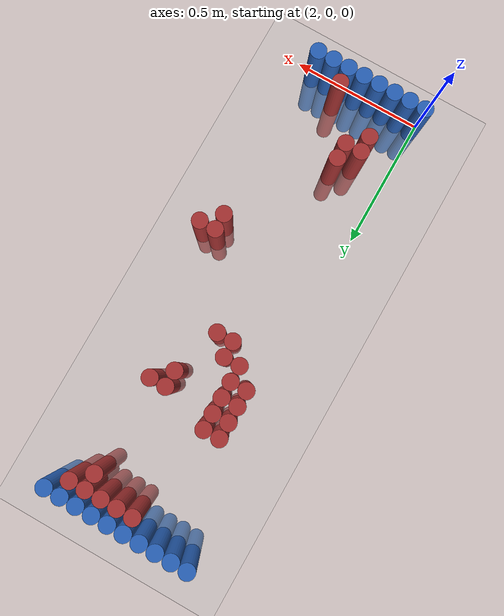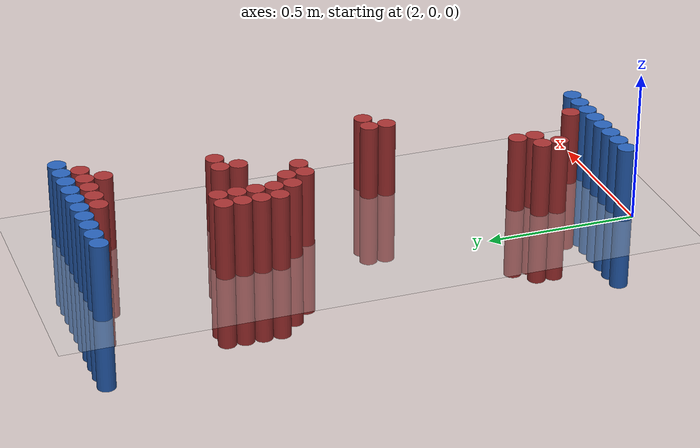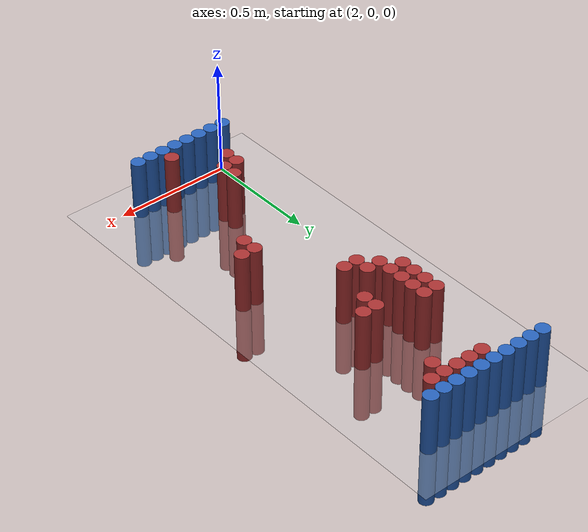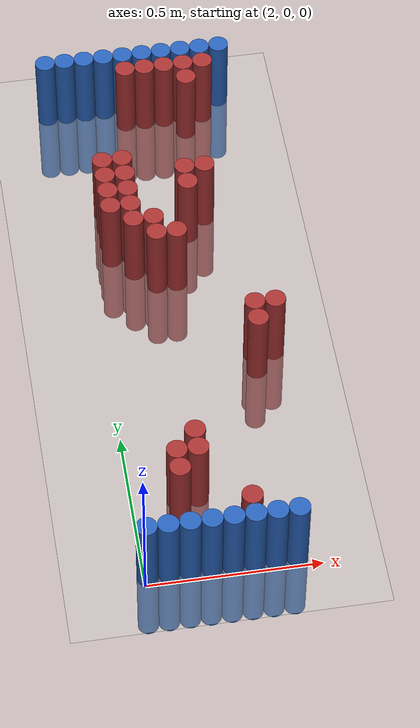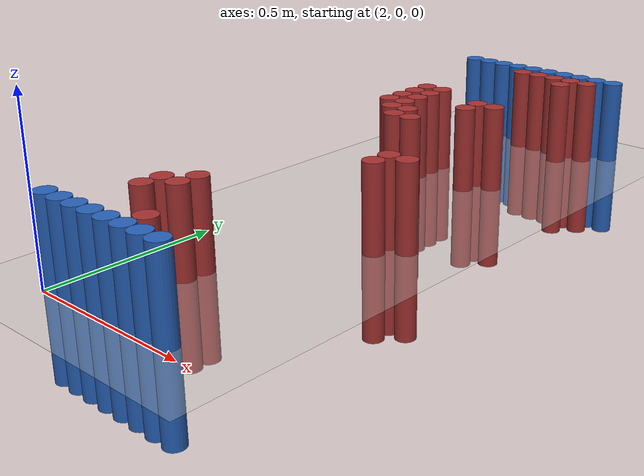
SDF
<sdf version="1.6">
 <world name="default">
  <model name="ground_plane">
   <static>1</static>
   <link name="link">
    <collision name="collision">
     <geometry><plane><normal>0 0 1</normal><size>100 100</size></plane></geometry>
     <surface><friction><ode><mu>100</mu><mu2>50</mu2></ode></friction></surface>
    </collision>
    <visual name="visual">
     <cast_shadows>0</cast_shadows>
     <geometry><plane><normal>0 0 1</normal><size>100 100</size></plane></geometry>
     <material>
      <script><uri>file://media/materials/scripts/gazebo.material</uri><name>Gazebo/Grey</name></script>
     </material>
    </visual>
   </link>
  </model>
  <model name="unit_cylinder_92">
   <static>1</static>
   <pose>1.950000 1.770000 0.000000 0.000000 0.000000 0.000000</pose>
   <link name="link">
    <inertial>
     <mass>1</mass>
     <inertia><ixx>0.145833</ixx><ixy>0</ixy><ixz>0</ixz><iyy>0.145833</iyy><iyz>0</iyz><izz>0.125</izz></inertia>
    </inertial>
    <collision name="collision">
     <geometry><cylinder><radius>0.030000</radius><length>0.5</length></cylinder></geometry>
    </collision>
    <visual name="visual">
     <geometry><cylinder><radius>0.030000</radius><length>0.5</length></cylinder></geometry>
     <material>
      <ambient>0.152000 0.379000 0.720000 1</ambient>
      <diffuse>0.152000 0.379000 0.720000 1</diffuse>
     </material>
     <material>
      <script><name>Gazebo/Grey</name><uri>file://media/materials/scripts/gazebo.material</uri></script>
     </material>
    </visual>
   </link>
  </model>
  <model name="unit_cylinder_93">
   <static>1</static>
   <pose>2.010000 0.030000 0.000000 0.000000 0.000000 0.000000</pose>
   <link name="link">
    <inertial>
     <mass>1</mass>
     <inertia><ixx>0.145833</ixx><ixy>0</ixy><ixz>0</ixz><iyy>0.145833</iyy><iyz>0</iyz><izz>0.125</izz></inertia>
    </inertial>
    <collision name="collision">
     <geometry><cylinder><radius>0.030000</radius><length>0.5</length></cylinder></geometry>
    </collision>
    <visual name="visual">
     <geometry><cylinder><radius>0.030000</radius><length>0.5</length></cylinder></geometry>
     <material>
      <ambient>0.152000 0.379000 0.720000 1</ambient>
      <diffuse>0.152000 0.379000 0.720000 1</diffuse>
     </material>
     <material>
      <script><name>Gazebo/Grey</name><uri>file://media/materials/scripts/gazebo.material</uri></script>
     </material>
    </visual>
   </link>
  </model>
  <model name="unit_cylinder_94">
   <static>1</static>
   <pose>2.010000 1.770000 0.000000 0.000000 0.000000 0.000000</pose>
   <link name="link">
    <inertial>
     <mass>1</mass>
     <inertia><ixx>0.145833</ixx><ixy>0</ixy><ixz>0</ixz><iyy>0.145833</iyy><iyz>0</iyz><izz>0.125</izz></inertia>
    </inertial>
    <collision name="collision">
     <geometry><cylinder><radius>0.030000</radius><length>0.5</length></cylinder></geometry>
    </collision>
    <visual name="visual">
     <geometry><cylinder><radius>0.030000</radius><length>0.5</length></cylinder></geometry>
     <material>
      <ambient>0.152000 0.379000 0.720000 1</ambient>
      <diffuse>0.152000 0.379000 0.720000 1</diffuse>
     </material>
     <material>
      <script><name>Gazebo/Grey</name><uri>file://media/materials/scripts/gazebo.material</uri></script>
     </material>
    </visual>
   </link>
  </model>
  <model name="unit_cylinder_95">
   <static>1</static>
   <pose>2.070000 1.770000 0.000000 0.000000 0.000000 0.000000</pose>
   <link name="link">
    <inertial>
     <mass>1</mass>
     <inertia><ixx>0.145833</ixx><ixy>0</ixy><ixz>0</ixz><iyy>0.145833</iyy><iyz>0</iyz><izz>0.125</izz></inertia>
    </inertial>
    <collision name="collision">
     <geometry><cylinder><radius>0.030000</radius><length>0.5</length></cylinder></geometry>
    </collision>
    <visual name="visual">
     <geometry><cylinder><radius>0.030000</radius><length>0.5</length></cylinder></geometry>
     <material>
      <ambient>0.152000 0.379000 0.720000 1</ambient>
      <diffuse>0.152000 0.379000 0.720000 1</diffuse>
     </material>
     <material>
      <script><name>Gazebo/Grey</name><uri>file://media/materials/scripts/gazebo.material</uri></script>
     </material>
    </visual>
   </link>
  </model>
  <model name="unit_cylinder_96">
   <static>1</static>
   <pose>2.130000 1.770000 0.000000 0.000000 0.000000 0.000000</pose>
   <link name="link">
    <inertial>
     <mass>1</mass>
     <inertia><ixx>0.145833</ixx><ixy>0</ixy><ixz>0</ixz><iyy>0.145833</iyy><iyz>0</iyz><izz>0.125</izz></inertia>
    </inertial>
    <collision name="collision">
     <geometry><cylinder><radius>0.030000</radius><length>0.5</length></cylinder></geometry>
    </collision>
    <visual name="visual">
     <geometry><cylinder><radius>0.030000</radius><length>0.5</length></cylinder></geometry>
     <material>
      <ambient>0.152000 0.379000 0.720000 1</ambient>
      <diffuse>0.152000 0.379000 0.720000 1</diffuse>
     </material>
     <material>
      <script><name>Gazebo/Grey</name><uri>file://media/materials/scripts/gazebo.material</uri></script>
     </material>
    </visual>
   </link>
  </model>
  <model name="unit_cylinder_97">
   <static>1</static>
   <pose>2.190000 1.770000 0.000000 0.000000 0.000000 0.000000</pose>
   <link name="link">
    <inertial>
     <mass>1</mass>
     <inertia><ixx>0.145833</ixx><ixy>0</ixy><ixz>0</ixz><iyy>0.145833</iyy><iyz>0</iyz><izz>0.125</izz></inertia>
    </inertial>
    <collision name="collision">
     <geometry><cylinder><radius>0.030000</radius><length>0.5</length></cylinder></geometry>
    </collision>
    <visual name="visual">
     <geometry><cylinder><radius>0.030000</radius><length>0.5</length></cylinder></geometry>
     <material>
      <ambient>0.152000 0.379000 0.720000 1</ambient>
      <diffuse>0.152000 0.379000 0.720000 1</diffuse>
     </material>
     <material>
      <script><name>Gazebo/Grey</name><uri>file://media/materials/scripts/gazebo.material</uri></script>
     </material>
    </visual>
   </link>
  </model>
  <model name="unit_cylinder_98">
   <static>1</static>
   <pose>2.250000 1.770000 0.000000 0.000000 0.000000 0.000000</pose>
   <link name="link">
    <inertial>
     <mass>1</mass>
     <inertia><ixx>0.145833</ixx><ixy>0</ixy><ixz>0</ixz><iyy>0.145833</iyy><iyz>0</iyz><izz>0.125</izz></inertia>
    </inertial>
    <collision name="collision">
     <geometry><cylinder><radius>0.030000</radius><length>0.5</length></cylinder></geometry>
    </collision>
    <visual name="visual">
     <geometry><cylinder><radius>0.030000</radius><length>0.5</length></cylinder></geometry>
     <material>
      <ambient>0.152000 0.379000 0.720000 1</ambient>
      <diffuse>0.152000 0.379000 0.720000 1</diffuse>
     </material>
     <material>
      <script><name>Gazebo/Grey</name><uri>file://media/materials/scripts/gazebo.material</uri></script>
     </material>
    </visual>
   </link>
  </model>
  <model name="unit_cylinder_99">
   <static>1</static>
   <pose>2.310000 1.770000 0.000000 0.000000 0.000000 0.000000</pose>
   <link name="link">
    <inertial>
     <mass>1</mass>
     <inertia><ixx>0.145833</ixx><ixy>0</ixy><ixz>0</ixz><iyy>0.145833</iyy><iyz>0</iyz><izz>0.125</izz></inertia>
    </inertial>
    <collision name="collision">
     <geometry><cylinder><radius>0.030000</radius><length>0.5</length></cylinder></geometry>
    </collision>
    <visual name="visual">
     <geometry><cylinder><radius>0.030000</radius><length>0.5</length></cylinder></geometry>
     <material>
      <ambient>0.152000 0.379000 0.720000 1</ambient>
      <diffuse>0.152000 0.379000 0.720000 1</diffuse>
     </material>
     <material>
      <script><name>Gazebo/Grey</name><uri>file://media/materials/scripts/gazebo.material</uri></script>
     </material>
    </visual>
   </link>
  </model>
  <model name="unit_cylinder_100">
   <static>1</static>
   <pose>2.370000 1.770000 0.000000 0.000000 0.000000 0.000000</pose>
   <link name="link">
    <inertial>
     <mass>1</mass>
     <inertia><ixx>0.145833</ixx><ixy>0</ixy><ixz>0</ixz><iyy>0.145833</iyy><iyz>0</iyz><izz>0.125</izz></inertia>
    </inertial>
    <collision name="collision">
     <geometry><cylinder><radius>0.030000</radius><length>0.5</length></cylinder></geometry>
    </collision>
    <visual name="visual">
     <geometry><cylinder><radius>0.030000</radius><length>0.5</length></cylinder></geometry>
     <material>
      <ambient>0.152000 0.379000 0.720000 1</ambient>
      <diffuse>0.152000 0.379000 0.720000 1</diffuse>
     </material>
     <material>
      <script><name>Gazebo/Grey</name><uri>file://media/materials/scripts/gazebo.material</uri></script>
     </material>
    </visual>
   </link>
  </model>
  <model name="unit_cylinder_101">
   <static>1</static>
   <pose>2.430000 1.770000 0.000000 0.000000 0.000000 0.000000</pose>
   <link name="link">
    <inertial>
     <mass>1</mass>
     <inertia><ixx>0.145833</ixx><ixy>0</ixy><ixz>0</ixz><iyy>0.145833</iyy><iyz>0</iyz><izz>0.125</izz></inertia>
    </inertial>
    <collision name="collision">
     <geometry><cylinder><radius>0.030000</radius><length>0.5</length></cylinder></geometry>
    </collision>
    <visual name="visual">
     <geometry><cylinder><radius>0.030000</radius><length>0.5</length></cylinder></geometry>
     <material>
      <ambient>0.152000 0.379000 0.720000 1</ambient>
      <diffuse>0.152000 0.379000 0.720000 1</diffuse>
     </material>
     <material>
      <script><name>Gazebo/Grey</name><uri>file://media/materials/scripts/gazebo.material</uri></script>
     </material>
    </visual>
   </link>
  </model>
  <model name="unit_cylinder_102">
   <static>1</static>
   <pose>2.490000 1.770000 0.000000 0.000000 0.000000 0.000000</pose>
   <link name="link">
    <inertial>
     <mass>1</mass>
     <inertia><ixx>0.145833</ixx><ixy>0</ixy><ixz>0</ixz><iyy>0.145833</iyy><iyz>0</iyz><izz>0.125</izz></inertia>
    </inertial>
    <collision name="collision">
     <geometry><cylinder><radius>0.030000</radius><length>0.5</length></cylinder></geometry>
    </collision>
    <visual name="visual">
     <geometry><cylinder><radius>0.030000</radius><length>0.5</length></cylinder></geometry>
     <material>
      <ambient>0.152000 0.379000 0.720000 1</ambient>
      <diffuse>0.152000 0.379000 0.720000 1</diffuse>
     </material>
     <material>
      <script><name>Gazebo/Grey</name><uri>file://media/materials/scripts/gazebo.material</uri></script>
     </material>
    </visual>
   </link>
  </model>
  <model name="unit_cylinder_125">
   <static>1</static>
   <pose>2.190000 1.710000 0.000000 0.000000 0.000000 0.000000</pose>
   <link name="link">
    <inertial>
     <mass>1</mass>
     <inertia><ixx>0.145833</ixx><ixy>0</ixy><ixz>0</ixz><iyy>0.145833</iyy><iyz>0</iyz><izz>0.125</izz></inertia>
    </inertial>
    <collision name="collision">
     <geometry><cylinder><radius>0.030000</radius><length>0.5</length></cylinder></geometry>
    </collision>
    <visual name="visual">
     <geometry><cylinder><radius>0.030000</radius><length>0.5</length></cylinder></geometry>
     <material>
      <ambient>0.648000 0.192000 0.192000 1</ambient>
      <diffuse>0.648000 0.192000 0.192000 1</diffuse>
     </material>
     <material>
      <script><name>Gazebo/Grey</name><uri>file://media/materials/scripts/gazebo.material</uri></script>
     </material>
    </visual>
   </link>
  </model>
  <model name="unit_cylinder_126">
   <static>1</static>
   <pose>2.250000 1.710000 0.000000 0.000000 0.000000 0.000000</pose>
   <link name="link">
    <inertial>
     <mass>1</mass>
     <inertia><ixx>0.145833</ixx><ixy>0</ixy><ixz>0</ixz><iyy>0.145833</iyy><iyz>0</iyz><izz>0.125</izz></inertia>
    </inertial>
    <collision name="collision">
     <geometry><cylinder><radius>0.030000</radius><length>0.5</length></cylinder></geometry>
    </collision>
    <visual name="visual">
     <geometry><cylinder><radius>0.030000</radius><length>0.5</length></cylinder></geometry>
     <material>
      <ambient>0.648000 0.192000 0.192000 1</ambient>
      <diffuse>0.648000 0.192000 0.192000 1</diffuse>
     </material>
     <material>
      <script><name>Gazebo/Grey</name><uri>file://media/materials/scripts/gazebo.material</uri></script>
     </material>
    </visual>
   </link>
  </model>
  <model name="unit_cylinder_127">
   <static>1</static>
   <pose>2.310000 1.710000 0.000000 0.000000 0.000000 0.000000</pose>
   <link name="link">
    <inertial>
     <mass>1</mass>
     <inertia><ixx>0.145833</ixx><ixy>0</ixy><ixz>0</ixz><iyy>0.145833</iyy><iyz>0</iyz><izz>0.125</izz></inertia>
    </inertial>
    <collision name="collision">
     <geometry><cylinder><radius>0.030000</radius><length>0.5</length></cylinder></geometry>
    </collision>
    <visual name="visual">
     <geometry><cylinder><radius>0.030000</radius><length>0.5</length></cylinder></geometry>
     <material>
      <ambient>0.648000 0.192000 0.192000 1</ambient>
      <diffuse>0.648000 0.192000 0.192000 1</diffuse>
     </material>
     <material>
      <script><name>Gazebo/Grey</name><uri>file://media/materials/scripts/gazebo.material</uri></script>
     </material>
    </visual>
   </link>
  </model>
  <model name="unit_cylinder_128">
   <static>1</static>
   <pose>2.370000 1.710000 0.000000 0.000000 0.000000 0.000000</pose>
   <link name="link">
    <inertial>
     <mass>1</mass>
     <inertia><ixx>0.145833</ixx><ixy>0</ixy><ixz>0</ixz><iyy>0.145833</iyy><iyz>0</iyz><izz>0.125</izz></inertia>
    </inertial>
    <collision name="collision">
     <geometry><cylinder><radius>0.030000</radius><length>0.5</length></cylinder></geometry>
    </collision>
    <visual name="visual">
     <geometry><cylinder><radius>0.030000</radius><length>0.5</length></cylinder></geometry>
     <material>
      <ambient>0.648000 0.192000 0.192000 1</ambient>
      <diffuse>0.648000 0.192000 0.192000 1</diffuse>
     </material>
     <material>
      <script><name>Gazebo/Grey</name><uri>file://media/materials/scripts/gazebo.material</uri></script>
     </material>
    </visual>
   </link>
  </model>
  <model name="unit_cylinder_129">
   <static>1</static>
   <pose>2.430000 1.710000 0.000000 0.000000 0.000000 0.000000</pose>
   <link name="link">
    <inertial>
     <mass>1</mass>
     <inertia><ixx>0.145833</ixx><ixy>0</ixy><ixz>0</ixz><iyy>0.145833</iyy><iyz>0</iyz><izz>0.125</izz></inertia>
    </inertial>
    <collision name="collision">
     <geometry><cylinder><radius>0.030000</radius><length>0.5</length></cylinder></geometry>
    </collision>
    <visual name="visual">
     <geometry><cylinder><radius>0.030000</radius><length>0.5</length></cylinder></geometry>
     <material>
      <ambient>0.648000 0.192000 0.192000 1</ambient>
      <diffuse>0.648000 0.192000 0.192000 1</diffuse>
     </material>
     <material>
      <script><name>Gazebo/Grey</name><uri>file://media/materials/scripts/gazebo.material</uri></script>
     </material>
    </visual>
   </link>
  </model>
  <model name="unit_cylinder_135">
   <static>1</static>
   <pose>2.370000 1.650000 0.000000 0.000000 0.000000 0.000000</pose>
   <link name="link">
    <inertial>
     <mass>1</mass>
     <inertia><ixx>0.145833</ixx><ixy>0</ixy><ixz>0</ixz><iyy>0.145833</iyy><iyz>0</iyz><izz>0.125</izz></inertia>
    </inertial>
    <collision name="collision">
     <geometry><cylinder><radius>0.030000</radius><length>0.5</length></cylinder></geometry>
    </collision>
    <visual name="visual">
     <geometry><cylinder><radius>0.030000</radius><length>0.5</length></cylinder></geometry>
     <material>
      <ambient>0.648000 0.192000 0.192000 1</ambient>
      <diffuse>0.648000 0.192000 0.192000 1</diffuse>
     </material>
     <material>
      <script><name>Gazebo/Grey</name><uri>file://media/materials/scripts/gazebo.material</uri></script>
     </material>
    </visual>
   </link>
  </model>
  <model name="unit_cylinder_142">
   <static>1</static>
   <pose>2.070000 1.350000 0.000000 0.000000 0.000000 0.000000</pose>
   <link name="link">
    <inertial>
     <mass>1</mass>
     <inertia><ixx>0.145833</ixx><ixy>0</ixy><ixz>0</ixz><iyy>0.145833</iyy><iyz>0</iyz><izz>0.125</izz></inertia>
    </inertial>
    <collision name="collision">
     <geometry><cylinder><radius>0.030000</radius><length>0.5</length></cylinder></geometry>
    </collision>
    <visual name="visual">
     <geometry><cylinder><radius>0.030000</radius><length>0.5</length></cylinder></geometry>
     <material>
      <ambient>0.648000 0.192000 0.192000 1</ambient>
      <diffuse>0.648000 0.192000 0.192000 1</diffuse>
     </material>
     <material>
      <script><name>Gazebo/Grey</name><uri>file://media/materials/scripts/gazebo.material</uri></script>
     </material>
    </visual>
   </link>
  </model>
  <model name="unit_cylinder_143">
   <static>1</static>
   <pose>2.130000 1.350000 0.000000 0.000000 0.000000 0.000000</pose>
   <link name="link">
    <inertial>
     <mass>1</mass>
     <inertia><ixx>0.145833</ixx><ixy>0</ixy><ixz>0</ixz><iyy>0.145833</iyy><iyz>0</iyz><izz>0.125</izz></inertia>
    </inertial>
    <collision name="collision">
     <geometry><cylinder><radius>0.030000</radius><length>0.5</length></cylinder></geometry>
    </collision>
    <visual name="visual">
     <geometry><cylinder><radius>0.030000</radius><length>0.5</length></cylinder></geometry>
     <material>
      <ambient>0.648000 0.192000 0.192000 1</ambient>
      <diffuse>0.648000 0.192000 0.192000 1</diffuse>
     </material>
     <material>
      <script><name>Gazebo/Grey</name><uri>file://media/materials/scripts/gazebo.material</uri></script>
     </material>
    </visual>
   </link>
  </model>
  <model name="unit_cylinder_145">
   <static>1</static>
   <pose>2.070000 1.290000 0.000000 0.000000 0.000000 0.000000</pose>
   <link name="link">
    <inertial>
     <mass>1</mass>
     <inertia><ixx>0.145833</ixx><ixy>0</ixy><ixz>0</ixz><iyy>0.145833</iyy><iyz>0</iyz><izz>0.125</izz></inertia>
    </inertial>
    <collision name="collision">
     <geometry><cylinder><radius>0.030000</radius><length>0.5</length></cylinder></geometry>
    </collision>
    <visual name="visual">
     <geometry><cylinder><radius>0.030000</radius><length>0.5</length></cylinder></geometry>
     <material>
      <ambient>0.648000 0.192000 0.192000 1</ambient>
      <diffuse>0.648000 0.192000 0.192000 1</diffuse>
     </material>
     <material>
      <script><name>Gazebo/Grey</name><uri>file://media/materials/scripts/gazebo.material</uri></script>
     </material>
    </visual>
   </link>
  </model>
  <model name="unit_cylinder_146">
   <static>1</static>
   <pose>2.130000 1.290000 0.000000 0.000000 0.000000 0.000000</pose>
   <link name="link">
    <inertial>
     <mass>1</mass>
     <inertia><ixx>0.145833</ixx><ixy>0</ixy><ixz>0</ixz><iyy>0.145833</iyy><iyz>0</iyz><izz>0.125</izz></inertia>
    </inertial>
    <collision name="collision">
     <geometry><cylinder><radius>0.030000</radius><length>0.5</length></cylinder></geometry>
    </collision>
    <visual name="visual">
     <geometry><cylinder><radius>0.030000</radius><length>0.5</length></cylinder></geometry>
     <material>
      <ambient>0.648000 0.192000 0.192000 1</ambient>
      <diffuse>0.648000 0.192000 0.192000 1</diffuse>
     </material>
     <material>
      <script><name>Gazebo/Grey</name><uri>file://media/materials/scripts/gazebo.material</uri></script>
     </material>
    </visual>
   </link>
  </model>
  <model name="unit_cylinder_147">
   <static>1</static>
   <pose>2.310000 1.290000 0.000000 0.000000 0.000000 0.000000</pose>
   <link name="link">
    <inertial>
     <mass>1</mass>
     <inertia><ixx>0.145833</ixx><ixy>0</ixy><ixz>0</ixz><iyy>0.145833</iyy><iyz>0</iyz><izz>0.125</izz></inertia>
    </inertial>
    <collision name="collision">
     <geometry><cylinder><radius>0.030000</radius><length>0.5</length></cylinder></geometry>
    </collision>
    <visual name="visual">
     <geometry><cylinder><radius>0.030000</radius><length>0.5</length></cylinder></geometry>
     <material>
      <ambient>0.648000 0.192000 0.192000 1</ambient>
      <diffuse>0.648000 0.192000 0.192000 1</diffuse>
     </material>
     <material>
      <script><name>Gazebo/Grey</name><uri>file://media/materials/scripts/gazebo.material</uri></script>
     </material>
    </visual>
   </link>
  </model>
  <model name="unit_cylinder_148">
   <static>1</static>
   <pose>2.370000 1.290000 0.000000 0.000000 0.000000 0.000000</pose>
   <link name="link">
    <inertial>
     <mass>1</mass>
     <inertia><ixx>0.145833</ixx><ixy>0</ixy><ixz>0</ixz><iyy>0.145833</iyy><iyz>0</iyz><izz>0.125</izz></inertia>
    </inertial>
    <collision name="collision">
     <geometry><cylinder><radius>0.030000</radius><length>0.5</length></cylinder></geometry>
    </collision>
    <visual name="visual">
     <geometry><cylinder><radius>0.030000</radius><length>0.5</length></cylinder></geometry>
     <material>
      <ambient>0.648000 0.192000 0.192000 1</ambient>
      <diffuse>0.648000 0.192000 0.192000 1</diffuse>
     </material>
     <material>
      <script><name>Gazebo/Grey</name><uri>file://media/materials/scripts/gazebo.material</uri></script>
     </material>
    </visual>
   </link>
  </model>
  <model name="unit_cylinder_151">
   <static>1</static>
   <pose>2.070000 1.230000 0.000000 0.000000 0.000000 0.000000</pose>
   <link name="link">
    <inertial>
     <mass>1</mass>
     <inertia><ixx>0.145833</ixx><ixy>0</ixy><ixz>0</ixz><iyy>0.145833</iyy><iyz>0</iyz><izz>0.125</izz></inertia>
    </inertial>
    <collision name="collision">
     <geometry><cylinder><radius>0.030000</radius><length>0.5</length></cylinder></geometry>
    </collision>
    <visual name="visual">
     <geometry><cylinder><radius>0.030000</radius><length>0.5</length></cylinder></geometry>
     <material>
      <ambient>0.648000 0.192000 0.192000 1</ambient>
      <diffuse>0.648000 0.192000 0.192000 1</diffuse>
     </material>
     <material>
      <script><name>Gazebo/Grey</name><uri>file://media/materials/scripts/gazebo.material</uri></script>
     </material>
    </visual>
   </link>
  </model>
  <model name="unit_cylinder_152">
   <static>1</static>
   <pose>2.130000 1.230000 0.000000 0.000000 0.000000 0.000000</pose>
   <link name="link">
    <inertial>
     <mass>1</mass>
     <inertia><ixx>0.145833</ixx><ixy>0</ixy><ixz>0</ixz><iyy>0.145833</iyy><iyz>0</iyz><izz>0.125</izz></inertia>
    </inertial>
    <collision name="collision">
     <geometry><cylinder><radius>0.030000</radius><length>0.5</length></cylinder></geometry>
    </collision>
    <visual name="visual">
     <geometry><cylinder><radius>0.030000</radius><length>0.5</length></cylinder></geometry>
     <material>
      <ambient>0.648000 0.192000 0.192000 1</ambient>
      <diffuse>0.648000 0.192000 0.192000 1</diffuse>
     </material>
     <material>
      <script><name>Gazebo/Grey</name><uri>file://media/materials/scripts/gazebo.material</uri></script>
     </material>
    </visual>
   </link>
  </model>
  <model name="unit_cylinder_153">
   <static>1</static>
   <pose>2.310000 1.230000 0.000000 0.000000 0.000000 0.000000</pose>
   <link name="link">
    <inertial>
     <mass>1</mass>
     <inertia><ixx>0.145833</ixx><ixy>0</ixy><ixz>0</ixz><iyy>0.145833</iyy><iyz>0</iyz><izz>0.125</izz></inertia>
    </inertial>
    <collision name="collision">
     <geometry><cylinder><radius>0.030000</radius><length>0.5</length></cylinder></geometry>
    </collision>
    <visual name="visual">
     <geometry><cylinder><radius>0.030000</radius><length>0.5</length></cylinder></geometry>
     <material>
      <ambient>0.648000 0.192000 0.192000 1</ambient>
      <diffuse>0.648000 0.192000 0.192000 1</diffuse>
     </material>
     <material>
      <script><name>Gazebo/Grey</name><uri>file://media/materials/scripts/gazebo.material</uri></script>
     </material>
    </visual>
   </link>
  </model>
  <model name="unit_cylinder_159">
   <static>1</static>
   <pose>2.070000 1.170000 0.000000 0.000000 0.000000 0.000000</pose>
   <link name="link">
    <inertial>
     <mass>1</mass>
     <inertia><ixx>0.145833</ixx><ixy>0</ixy><ixz>0</ixz><iyy>0.145833</iyy><iyz>0</iyz><izz>0.125</izz></inertia>
    </inertial>
    <collision name="collision">
     <geometry><cylinder><radius>0.030000</radius><length>0.5</length></cylinder></geometry>
    </collision>
    <visual name="visual">
     <geometry><cylinder><radius>0.030000</radius><length>0.5</length></cylinder></geometry>
     <material>
      <ambient>0.648000 0.192000 0.192000 1</ambient>
      <diffuse>0.648000 0.192000 0.192000 1</diffuse>
     </material>
     <material>
      <script><name>Gazebo/Grey</name><uri>file://media/materials/scripts/gazebo.material</uri></script>
     </material>
    </visual>
   </link>
  </model>
  <model name="unit_cylinder_160">
   <static>1</static>
   <pose>2.130000 1.170000 0.000000 0.000000 0.000000 0.000000</pose>
   <link name="link">
    <inertial>
     <mass>1</mass>
     <inertia><ixx>0.145833</ixx><ixy>0</ixy><ixz>0</ixz><iyy>0.145833</iyy><iyz>0</iyz><izz>0.125</izz></inertia>
    </inertial>
    <collision name="collision">
     <geometry><cylinder><radius>0.030000</radius><length>0.5</length></cylinder></geometry>
    </collision>
    <visual name="visual">
     <geometry><cylinder><radius>0.030000</radius><length>0.5</length></cylinder></geometry>
     <material>
      <ambient>0.648000 0.192000 0.192000 1</ambient>
      <diffuse>0.648000 0.192000 0.192000 1</diffuse>
     </material>
     <material>
      <script><name>Gazebo/Grey</name><uri>file://media/materials/scripts/gazebo.material</uri></script>
     </material>
    </visual>
   </link>
  </model>
  <model name="unit_cylinder_165">
   <static>1</static>
   <pose>2.130000 1.110000 0.000000 0.000000 0.000000 0.000000</pose>
   <link name="link">
    <inertial>
     <mass>1</mass>
     <inertia><ixx>0.145833</ixx><ixy>0</ixy><ixz>0</ixz><iyy>0.145833</iyy><iyz>0</iyz><izz>0.125</izz></inertia>
    </inertial>
    <collision name="collision">
     <geometry><cylinder><radius>0.030000</radius><length>0.5</length></cylinder></geometry>
    </collision>
    <visual name="visual">
     <geometry><cylinder><radius>0.030000</radius><length>0.5</length></cylinder></geometry>
     <material>
      <ambient>0.648000 0.192000 0.192000 1</ambient>
      <diffuse>0.648000 0.192000 0.192000 1</diffuse>
     </material>
     <material>
      <script><name>Gazebo/Grey</name><uri>file://media/materials/scripts/gazebo.material</uri></script>
     </material>
    </visual>
   </link>
  </model>
  <model name="unit_cylinder_166">
   <static>1</static>
   <pose>2.190000 1.110000 0.000000 0.000000 0.000000 0.000000</pose>
   <link name="link">
    <inertial>
     <mass>1</mass>
     <inertia><ixx>0.145833</ixx><ixy>0</ixy><ixz>0</ixz><iyy>0.145833</iyy><iyz>0</iyz><izz>0.125</izz></inertia>
    </inertial>
    <collision name="collision">
     <geometry><cylinder><radius>0.030000</radius><length>0.5</length></cylinder></geometry>
    </collision>
    <visual name="visual">
     <geometry><cylinder><radius>0.030000</radius><length>0.5</length></cylinder></geometry>
     <material>
      <ambient>0.648000 0.192000 0.192000 1</ambient>
      <diffuse>0.648000 0.192000 0.192000 1</diffuse>
     </material>
     <material>
      <script><name>Gazebo/Grey</name><uri>file://media/materials/scripts/gazebo.material</uri></script>
     </material>
    </visual>
   </link>
  </model>
  <model name="unit_cylinder_171">
   <static>1</static>
   <pose>2.190000 1.050000 0.000000 0.000000 0.000000 0.000000</pose>
   <link name="link">
    <inertial>
     <mass>1</mass>
     <inertia><ixx>0.145833</ixx><ixy>0</ixy><ixz>0</ixz><iyy>0.145833</iyy><iyz>0</iyz><izz>0.125</izz></inertia>
    </inertial>
    <collision name="collision">
     <geometry><cylinder><radius>0.030000</radius><length>0.5</length></cylinder></geometry>
    </collision>
    <visual name="visual">
     <geometry><cylinder><radius>0.030000</radius><length>0.5</length></cylinder></geometry>
     <material>
      <ambient>0.648000 0.192000 0.192000 1</ambient>
      <diffuse>0.648000 0.192000 0.192000 1</diffuse>
     </material>
     <material>
      <script><name>Gazebo/Grey</name><uri>file://media/materials/scripts/gazebo.material</uri></script>
     </material>
    </visual>
   </link>
  </model>
  <model name="unit_cylinder_172">
   <static>1</static>
   <pose>2.250000 1.050000 0.000000 0.000000 0.000000 0.000000</pose>
   <link name="link">
    <inertial>
     <mass>1</mass>
     <inertia><ixx>0.145833</ixx><ixy>0</ixy><ixz>0</ixz><iyy>0.145833</iyy><iyz>0</iyz><izz>0.125</izz></inertia>
    </inertial>
    <collision name="collision">
     <geometry><cylinder><radius>0.030000</radius><length>0.5</length></cylinder></geometry>
    </collision>
    <visual name="visual">
     <geometry><cylinder><radius>0.030000</radius><length>0.5</length></cylinder></geometry>
     <material>
      <ambient>0.648000 0.192000 0.192000 1</ambient>
      <diffuse>0.648000 0.192000 0.192000 1</diffuse>
     </material>
     <material>
      <script><name>Gazebo/Grey</name><uri>file://media/materials/scripts/gazebo.material</uri></script>
     </material>
    </visual>
   </link>
  </model>
  <model name="unit_cylinder_180">
   <static>1</static>
   <pose>2.430000 0.750000 0.000000 0.000000 0.000000 0.000000</pose>
   <link name="link">
    <inertial>
     <mass>1</mass>
     <inertia><ixx>0.145833</ixx><ixy>0</ixy><ixz>0</ixz><iyy>0.145833</iyy><iyz>0</iyz><izz>0.125</izz></inertia>
    </inertial>
    <collision name="collision">
     <geometry><cylinder><radius>0.030000</radius><length>0.5</length></cylinder></geometry>
    </collision>
    <visual name="visual">
     <geometry><cylinder><radius>0.030000</radius><length>0.5</length></cylinder></geometry>
     <material>
      <ambient>0.648000 0.192000 0.192000 1</ambient>
      <diffuse>0.648000 0.192000 0.192000 1</diffuse>
     </material>
     <material>
      <script><name>Gazebo/Grey</name><uri>file://media/materials/scripts/gazebo.material</uri></script>
     </material>
    </visual>
   </link>
  </model>
  <model name="unit_cylinder_181">
   <static>1</static>
   <pose>2.490000 0.750000 0.000000 0.000000 0.000000 0.000000</pose>
   <link name="link">
    <inertial>
     <mass>1</mass>
     <inertia><ixx>0.145833</ixx><ixy>0</ixy><ixz>0</ixz><iyy>0.145833</iyy><iyz>0</iyz><izz>0.125</izz></inertia>
    </inertial>
    <collision name="collision">
     <geometry><cylinder><radius>0.030000</radius><length>0.5</length></cylinder></geometry>
    </collision>
    <visual name="visual">
     <geometry><cylinder><radius>0.030000</radius><length>0.5</length></cylinder></geometry>
     <material>
      <ambient>0.648000 0.192000 0.192000 1</ambient>
      <diffuse>0.648000 0.192000 0.192000 1</diffuse>
     </material>
     <material>
      <script><name>Gazebo/Grey</name><uri>file://media/materials/scripts/gazebo.material</uri></script>
     </material>
    </visual>
   </link>
  </model>
  <model name="unit_cylinder_182">
   <static>1</static>
   <pose>2.430000 0.690000 0.000000 0.000000 0.000000 0.000000</pose>
   <link name="link">
    <inertial>
     <mass>1</mass>
     <inertia><ixx>0.145833</ixx><ixy>0</ixy><ixz>0</ixz><iyy>0.145833</iyy><iyz>0</iyz><izz>0.125</izz></inertia>
    </inertial>
    <collision name="collision">
     <geometry><cylinder><radius>0.030000</radius><length>0.5</length></cylinder></geometry>
    </collision>
    <visual name="visual">
     <geometry><cylinder><radius>0.030000</radius><length>0.5</length></cylinder></geometry>
     <material>
      <ambient>0.648000 0.192000 0.192000 1</ambient>
      <diffuse>0.648000 0.192000 0.192000 1</diffuse>
     </material>
     <material>
      <script><name>Gazebo/Grey</name><uri>file://media/materials/scripts/gazebo.material</uri></script>
     </material>
    </visual>
   </link>
  </model>
  <model name="unit_cylinder_202">
   <static>1</static>
   <pose>2.190000 0.330000 0.000000 0.000000 0.000000 0.000000</pose>
   <link name="link">
    <inertial>
     <mass>1</mass>
     <inertia><ixx>0.145833</ixx><ixy>0</ixy><ixz>0</ixz><iyy>0.145833</iyy><iyz>0</iyz><izz>0.125</izz></inertia>
    </inertial>
    <collision name="collision">
     <geometry><cylinder><radius>0.030000</radius><length>0.5</length></cylinder></geometry>
    </collision>
    <visual name="visual">
     <geometry><cylinder><radius>0.030000</radius><length>0.5</length></cylinder></geometry>
     <material>
      <ambient>0.648000 0.192000 0.192000 1</ambient>
      <diffuse>0.648000 0.192000 0.192000 1</diffuse>
     </material>
     <material>
      <script><name>Gazebo/Grey</name><uri>file://media/materials/scripts/gazebo.material</uri></script>
     </material>
    </visual>
   </link>
  </model>
  <model name="unit_cylinder_213">
   <static>1</static>
   <pose>2.130000 0.270000 0.000000 0.000000 0.000000 0.000000</pose>
   <link name="link">
    <inertial>
     <mass>1</mass>
     <inertia><ixx>0.145833</ixx><ixy>0</ixy><ixz>0</ixz><iyy>0.145833</iyy><iyz>0</iyz><izz>0.125</izz></inertia>
    </inertial>
    <collision name="collision">
     <geometry><cylinder><radius>0.030000</radius><length>0.5</length></cylinder></geometry>
    </collision>
    <visual name="visual">
     <geometry><cylinder><radius>0.030000</radius><length>0.5</length></cylinder></geometry>
     <material>
      <ambient>0.648000 0.192000 0.192000 1</ambient>
      <diffuse>0.648000 0.192000 0.192000 1</diffuse>
     </material>
     <material>
      <script><name>Gazebo/Grey</name><uri>file://media/materials/scripts/gazebo.material</uri></script>
     </material>
    </visual>
   </link>
  </model>
  <model name="unit_cylinder_214">
   <static>1</static>
   <pose>2.190000 0.270000 0.000000 0.000000 0.000000 0.000000</pose>
   <link name="link">
    <inertial>
     <mass>1</mass>
     <inertia><ixx>0.145833</ixx><ixy>0</ixy><ixz>0</ixz><iyy>0.145833</iyy><iyz>0</iyz><izz>0.125</izz></inertia>
    </inertial>
    <collision name="collision">
     <geometry><cylinder><radius>0.030000</radius><length>0.5</length></cylinder></geometry>
    </collision>
    <visual name="visual">
     <geometry><cylinder><radius>0.030000</radius><length>0.5</length></cylinder></geometry>
     <material>
      <ambient>0.648000 0.192000 0.192000 1</ambient>
      <diffuse>0.648000 0.192000 0.192000 1</diffuse>
     </material>
     <material>
      <script><name>Gazebo/Grey</name><uri>file://media/materials/scripts/gazebo.material</uri></script>
     </material>
    </visual>
   </link>
  </model>
  <model name="unit_cylinder_222">
   <static>1</static>
   <pose>2.130000 0.210000 0.000000 0.000000 0.000000 0.000000</pose>
   <link name="link">
    <inertial>
     <mass>1</mass>
     <inertia><ixx>0.145833</ixx><ixy>0</ixy><ixz>0</ixz><iyy>0.145833</iyy><iyz>0</iyz><izz>0.125</izz></inertia>
    </inertial>
    <collision name="collision">
     <geometry><cylinder><radius>0.030000</radius><length>0.5</length></cylinder></geometry>
    </collision>
    <visual name="visual">
     <geometry><cylinder><radius>0.030000</radius><length>0.5</length></cylinder></geometry>
     <material>
      <ambient>0.648000 0.192000 0.192000 1</ambient>
      <diffuse>0.648000 0.192000 0.192000 1</diffuse>
     </material>
     <material>
      <script><name>Gazebo/Grey</name><uri>file://media/materials/scripts/gazebo.material</uri></script>
     </material>
    </visual>
   </link>
  </model>
  <model name="unit_cylinder_235">
   <static>1</static>
   <pose>2.310000 0.090000 0.000000 0.000000 0.000000 0.000000</pose>
   <link name="link">
    <inertial>
     <mass>1</mass>
     <inertia><ixx>0.145833</ixx><ixy>0</ixy><ixz>0</ixz><iyy>0.145833</iyy><iyz>0</iyz><izz>0.125</izz></inertia>
    </inertial>
    <collision name="collision">
     <geometry><cylinder><radius>0.030000</radius><length>0.5</length></cylinder></geometry>
    </collision>
    <visual name="visual">
     <geometry><cylinder><radius>0.030000</radius><length>0.5</length></cylinder></geometry>
     <material>
      <ambient>0.648000 0.192000 0.192000 1</ambient>
      <diffuse>0.648000 0.192000 0.192000 1</diffuse>
     </material>
     <material>
      <script><name>Gazebo/Grey</name><uri>file://media/materials/scripts/gazebo.material</uri></script>
     </material>
    </visual>
   </link>
  </model>
  <model name="unit_cylinder_248">
   <static>1</static>
   <pose>2.070000 0.030000 0.000000 0.000000 0.000000 0.000000</pose>
   <link name="link">
    <inertial>
     <mass>1</mass>
     <inertia><ixx>0.145833</ixx><ixy>0</ixy><ixz>0</ixz><iyy>0.145833</iyy><iyz>0</iyz><izz>0.125</izz></inertia>
    </inertial>
    <collision name="collision">
     <geometry><cylinder><radius>0.030000</radius><length>0.5</length></cylinder></geometry>
    </collision>
    <visual name="visual">
     <geometry><cylinder><radius>0.030000</radius><length>0.5</length></cylinder></geometry>
     <material>
      <ambient>0.152000 0.379000 0.720000 1</ambient>
      <diffuse>0.152000 0.379000 0.720000 1</diffuse>
     </material>
     <material>
      <script><name>Gazebo/Grey</name><uri>file://media/materials/scripts/gazebo.material</uri></script>
     </material>
    </visual>
   </link>
  </model>
  <model name="unit_cylinder_249">
   <static>1</static>
   <pose>2.130000 0.030000 0.000000 0.000000 0.000000 0.000000</pose>
   <link name="link">
    <inertial>
     <mass>1</mass>
     <inertia><ixx>0.145833</ixx><ixy>0</ixy><ixz>0</ixz><iyy>0.145833</iyy><iyz>0</iyz><izz>0.125</izz></inertia>
    </inertial>
    <collision name="collision">
     <geometry><cylinder><radius>0.030000</radius><length>0.5</length></cylinder></geometry>
    </collision>
    <visual name="visual">
     <geometry><cylinder><radius>0.030000</radius><length>0.5</length></cylinder></geometry>
     <material>
      <ambient>0.152000 0.379000 0.720000 1</ambient>
      <diffuse>0.152000 0.379000 0.720000 1</diffuse>
     </material>
     <material>
      <script><name>Gazebo/Grey</name><uri>file://media/materials/scripts/gazebo.material</uri></script>
     </material>
    </visual>
   </link>
  </model>
  <model name="unit_cylinder_250">
   <static>1</static>
   <pose>2.190000 0.030000 0.000000 0.000000 0.000000 0.000000</pose>
   <link name="link">
    <inertial>
     <mass>1</mass>
     <inertia><ixx>0.145833</ixx><ixy>0</ixy><ixz>0</ixz><iyy>0.145833</iyy><iyz>0</iyz><izz>0.125</izz></inertia>
    </inertial>
    <collision name="collision">
     <geometry><cylinder><radius>0.030000</radius><length>0.5</length></cylinder></geometry>
    </collision>
    <visual name="visual">
     <geometry><cylinder><radius>0.030000</radius><length>0.5</length></cylinder></geometry>
     <material>
      <ambient>0.152000 0.379000 0.720000 1</ambient>
      <diffuse>0.152000 0.379000 0.720000 1</diffuse>
     </material>
     <material>
      <script><name>Gazebo/Grey</name><uri>file://media/materials/scripts/gazebo.material</uri></script>
     </material>
    </visual>
   </link>
  </model>
  <model name="unit_cylinder_251">
   <static>1</static>
   <pose>2.250000 0.030000 0.000000 0.000000 0.000000 0.000000</pose>
   <link name="link">
    <inertial>
     <mass>1</mass>
     <inertia><ixx>0.145833</ixx><ixy>0</ixy><ixz>0</ixz><iyy>0.145833</iyy><iyz>0</iyz><izz>0.125</izz></inertia>
    </inertial>
    <collision name="collision">
     <geometry><cylinder><radius>0.030000</radius><length>0.5</length></cylinder></geometry>
    </collision>
    <visual name="visual">
     <geometry><cylinder><radius>0.030000</radius><length>0.5</length></cylinder></geometry>
     <material>
      <ambient>0.152000 0.379000 0.720000 1</ambient>
      <diffuse>0.152000 0.379000 0.720000 1</diffuse>
     </material>
     <material>
      <script><name>Gazebo/Grey</name><uri>file://media/materials/scripts/gazebo.material</uri></script>
     </material>
    </visual>
   </link>
  </model>
  <model name="unit_cylinder_252">
   <static>1</static>
   <pose>2.310000 0.030000 0.000000 0.000000 0.000000 0.000000</pose>
   <link name="link">
    <inertial>
     <mass>1</mass>
     <inertia><ixx>0.145833</ixx><ixy>0</ixy><ixz>0</ixz><iyy>0.145833</iyy><iyz>0</iyz><izz>0.125</izz></inertia>
    </inertial>
    <collision name="collision">
     <geometry><cylinder><radius>0.030000</radius><length>0.5</length></cylinder></geometry>
    </collision>
    <visual name="visual">
     <geometry><cylinder><radius>0.030000</radius><length>0.5</length></cylinder></geometry>
     <material>
      <ambient>0.152000 0.379000 0.720000 1</ambient>
      <diffuse>0.152000 0.379000 0.720000 1</diffuse>
     </material>
     <material>
      <script><name>Gazebo/Grey</name><uri>file://media/materials/scripts/gazebo.material</uri></script>
     </material>
    </visual>
   </link>
  </model>
  <model name="unit_cylinder_253">
   <static>1</static>
   <pose>2.370000 0.030000 0.000000 0.000000 0.000000 0.000000</pose>
   <link name="link">
    <inertial>
     <mass>1</mass>
     <inertia><ixx>0.145833</ixx><ixy>0</ixy><ixz>0</ixz><iyy>0.145833</iyy><iyz>0</iyz><izz>0.125</izz></inertia>
    </inertial>
    <collision name="collision">
     <geometry><cylinder><radius>0.030000</radius><length>0.5</length></cylinder></geometry>
    </collision>
    <visual name="visual">
     <geometry><cylinder><radius>0.030000</radius><length>0.5</length></cylinder></geometry>
     <material>
      <ambient>0.152000 0.379000 0.720000 1</ambient>
      <diffuse>0.152000 0.379000 0.720000 1</diffuse>
     </material>
     <material>
      <script><name>Gazebo/Grey</name><uri>file://media/materials/scripts/gazebo.material</uri></script>
     </material>
    </visual>
   </link>
  </model>
  <model name="unit_cylinder_254">
   <static>1</static>
   <pose>2.430000 0.030000 0.000000 0.000000 0.000000 0.000000</pose>
   <link name="link">
    <inertial>
     <mass>1</mass>
     <inertia><ixx>0.145833</ixx><ixy>0</ixy><ixz>0</ixz><iyy>0.145833</iyy><iyz>0</iyz><izz>0.125</izz></inertia>
    </inertial>
    <collision name="collision">
     <geometry><cylinder><radius>0.030000</radius><length>0.5</length></cylinder></geometry>
    </collision>
    <visual name="visual">
     <geometry><cylinder><radius>0.030000</radius><length>0.5</length></cylinder></geometry>
     <material>
      <ambient>0.152000 0.379000 0.720000 1</ambient>
      <diffuse>0.152000 0.379000 0.720000 1</diffuse>
     </material>
     <material>
      <script><name>Gazebo/Grey</name><uri>file://media/materials/scripts/gazebo.material</uri></script>
     </material>
    </visual>
   </link>
  </model>
 </world>
</sdf>
